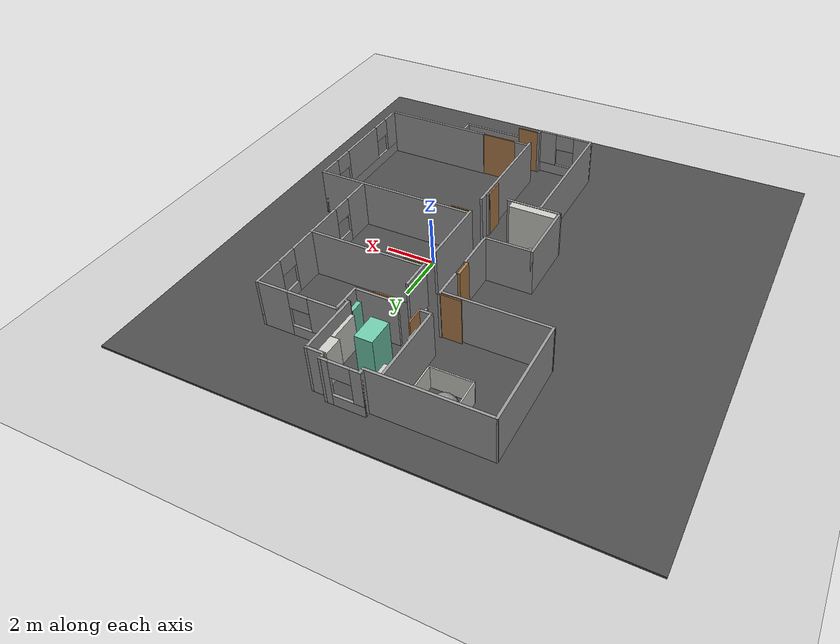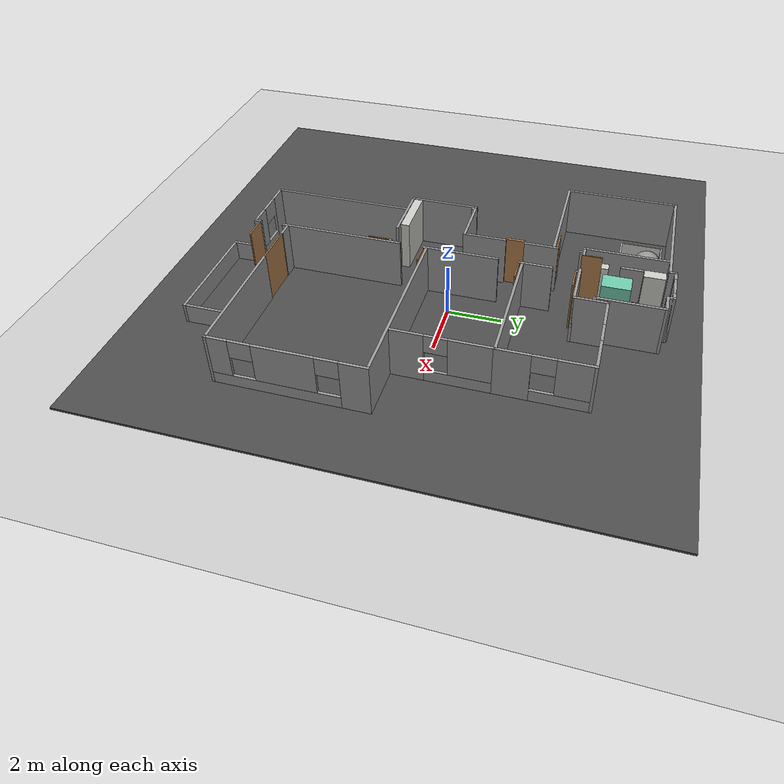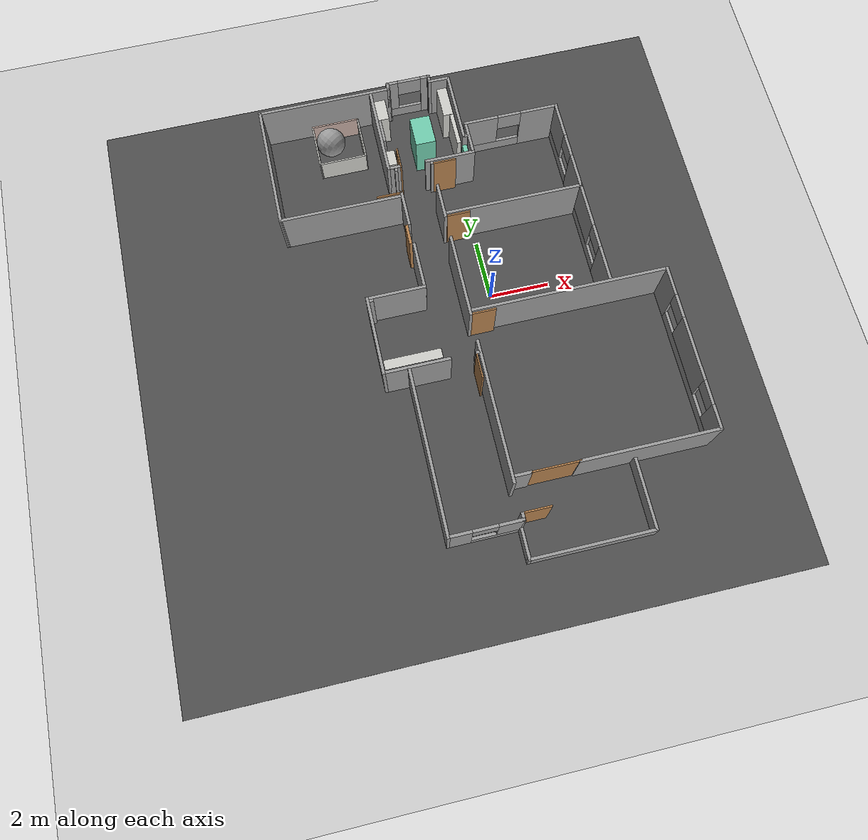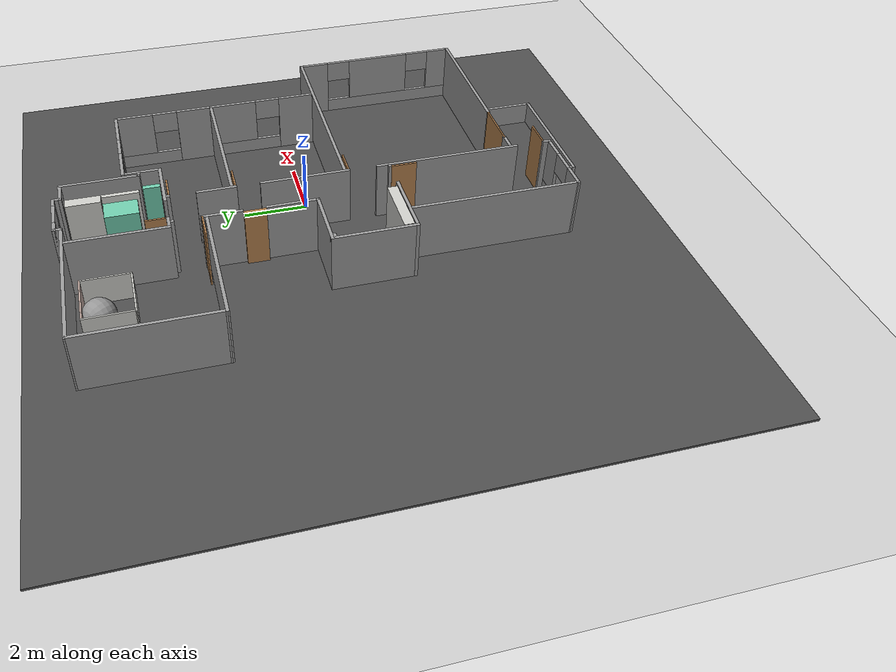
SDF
<sdf version="1.4">
 <world name="default">
  <light name="sun" type="directional">
   <pose>0 0 10 0 -0 0</pose>
   <diffuse>0.8 0.8 0.8 1</diffuse>
   <specular>0.2 0.2 0.2 1</specular>
   <attenuation>
    <range>1000</range>
    <constant>0.9</constant>
    <linear>0.01</linear>
    <quadratic>0.001</quadratic>
   </attenuation>
   <direction>-0.5 0.1 -0.9</direction>
  </light>
  <model name="ground_plane">
   <static>1</static>
   <link name="link">
    <collision name="collision">
     <geometry><plane><normal>0 0 1</normal><size>100 100</size></plane></geometry>
     <surface><friction><ode><mu>100</mu><mu2>50</mu2></ode></friction></surface>
    </collision>
    <visual name="visual">
     <cast_shadows>0</cast_shadows>
     <geometry><plane><normal>0 0 1</normal><size>100 100</size></plane></geometry>
     <material>
      <script><uri>file://media/materials/scripts/gazebo.material</uri><name>Gazebo/Grey</name></script>
     </material>
    </visual>
    <velocity_decay><linear>0</linear><angular>0</angular></velocity_decay>
   </link>
  </model>
  <physics type="ode">
   <max_step_size>0.001</max_step_size>
   <real_time_factor>1</real_time_factor>
   <real_time_update_rate>1000</real_time_update_rate>
   <gravity>0 0 -9.8</gravity>
  </physics>
  <scene><ambient>0.4 0.4 0.4 1</ambient><background>0.7 0.7 0.7 1</background><shadows>1</shadows></scene>
  <spherical_coordinates>
   <surface_model>EARTH_WGS84</surface_model>
   <latitude_deg>0</latitude_deg>
   <longitude_deg>0</longitude_deg>
   <elevation>0</elevation>
   <heading_deg>0</heading_deg>
  </spherical_coordinates>
  <model name="MilvusOfficeWalls">
   <pose>-0.418394 -0.567142 0 0 -0 0</pose>
   <link name="Wall_1">
    <collision name="Wall_1_Collision">
     <geometry><box><size>6.523 0.1 2</size></box></geometry>
     <pose>0 0 1 0 -0 0</pose>
    </collision>
    <visual name="Wall_1_Visual">
     <pose>0 0 1 0 -0 0</pose>
     <geometry><box><size>6.523 0.1 2</size></box></geometry>
     <material>
      <script><uri>file://media/materials/scripts/gazebo.material</uri><name>Gazebo/Grey</name></script>
      <ambient>1 1 1 1</ambient>
     </material>
    </visual>
    <pose>2.69703 -0.505 0 0 -0 0</pose>
    <velocity_decay><linear>0</linear><angular>0</angular></velocity_decay>
   </link>
   <link name="Wall_10">
    <collision name="Wall_10_Collision">
     <geometry><box><size>0.54 0.1 2</size></box></geometry>
     <pose>0 0 1 0 -0 0</pose>
    </collision>
    <visual name="Wall_10_Visual">
     <pose>0 0 1 0 -0 0</pose>
     <geometry><box><size>0.54 0.1 2</size></box></geometry>
     <material>
      <script><uri>file://media/materials/scripts/gazebo.material</uri><name>Gazebo/Grey</name></script>
      <ambient>1 1 1 1</ambient>
     </material>
    </visual>
    <pose>-0.29147 -5.951 0 0 -0 3.14159</pose>
    <velocity_decay><linear>0</linear><angular>0</angular></velocity_decay>
   </link>
   <link name="Wall_101">
    <collision name="Wall_101_Collision">
     <geometry><box><size>2.45 0.1 2</size></box></geometry>
     <pose>0 0 1 0 -0 0</pose>
    </collision>
    <visual name="Wall_101_Visual">
     <pose>0 0 1 0 -0 0</pose>
     <geometry><box><size>2.45 0.1 2</size></box></geometry>
     <material>
      <script><uri>file://media/materials/scripts/gazebo.material</uri><name>Gazebo/Grey</name></script>
      <ambient>1 1 1 1</ambient>
     </material>
    </visual>
    <pose>0.67653 6.909 0 0 0 -1.5708</pose>
    <velocity_decay><linear>0</linear><angular>0</angular></velocity_decay>
   </link>
   <link name="Wall_104">
    <collision name="Wall_104_Collision">
     <geometry><box><size>3.05 0.1 2</size></box></geometry>
     <pose>0 0 1 0 -0 0</pose>
    </collision>
    <visual name="Wall_104_Visual">
     <pose>0 0 1 0 -0 0</pose>
     <geometry><box><size>3.05 0.1 2</size></box></geometry>
     <material>
      <script><uri>file://media/materials/scripts/gazebo.material</uri><name>Gazebo/Grey</name></script>
      <ambient>1 1 1 1</ambient>
     </material>
    </visual>
    <pose>-2.06847 6.529 0 0 0 -1.5708</pose>
    <velocity_decay><linear>0</linear><angular>0</angular></velocity_decay>
   </link>
   <link name="Wall_106">
    <collision name="Wall_106_Collision">
     <geometry><box><size>0.5 0.1 2</size></box></geometry>
     <pose>0 0 1 0 -0 0</pose>
    </collision>
    <visual name="Wall_106_Visual">
     <pose>0 0 1 0 -0 0</pose>
     <geometry><box><size>0.5 0.1 2</size></box></geometry>
     <material>
      <script><uri>file://media/materials/scripts/gazebo.material</uri><name>Gazebo/Grey</name></script>
      <ambient>1 1 1 1</ambient>
     </material>
    </visual>
    <pose>-1.86847 5.054 0 0 -0 0</pose>
    <velocity_decay><linear>0</linear><angular>0</angular></velocity_decay>
   </link>
   <link name="Wall_108">
    <collision name="Wall_108_Collision">
     <geometry><box><size>0.73 0.05 2</size></box></geometry>
     <pose>0 0 1 0 -0 0</pose>
    </collision>
    <visual name="Wall_108_Visual">
     <pose>0 0 1 0 -0 0</pose>
     <geometry><box><size>0.73 0.05 2</size></box></geometry>
     <material>
      <script><uri>file://media/materials/scripts/gazebo.material</uri><name>Gazebo/Wood</name></script>
      <ambient>1 1 1 1</ambient>
     </material>
    </visual>
    <pose>-1.63947 5.365 0 0 0 -1.5708</pose>
    <velocity_decay><linear>0</linear><angular>0</angular></velocity_decay>
   </link>
   <link name="Wall_112">
    <collision name="Wall_112_Collision">
     <geometry><box><size>0.12 0.1 2</size></box></geometry>
     <pose>0 0 1 0 -0 0</pose>
    </collision>
    <visual name="Wall_112_Visual">
     <pose>0 0 1 0 -0 0</pose>
     <geometry><box><size>0.12 0.1 2</size></box></geometry>
     <material>
      <script><uri>file://media/materials/scripts/gazebo.material</uri><name>Gazebo/Grey</name></script>
      <ambient>1 1 1 1</ambient>
     </material>
    </visual>
    <pose>-1.82847 4.957 0 0 -0 1.5708</pose>
    <velocity_decay><linear>0</linear><angular>0</angular></velocity_decay>
   </link>
   <link name="Wall_114">
    <collision name="Wall_114_Collision">
     <geometry><box><size>0.856 0.05 2</size></box></geometry>
     <pose>0 0 1 0 -0 0</pose>
    </collision>
    <visual name="Wall_114_Visual">
     <pose>0 0 1 0 -0 0</pose>
     <geometry><box><size>0.856 0.05 2</size></box></geometry>
     <material>
      <script><uri>file://media/materials/scripts/gazebo.material</uri><name>Gazebo/Wood</name></script>
      <ambient>1 1 1 1</ambient>
     </material>
    </visual>
    <pose>-2.23247 4.071 0 0 -0 0</pose>
    <velocity_decay><linear>0</linear><angular>0</angular></velocity_decay>
   </link>
   <link name="Wall_118">
    <collision name="Wall_118_Collision">
     <geometry><box><size>0.126 0.1 2</size></box></geometry>
     <pose>0 0 1 0 -0 0</pose>
    </collision>
    <visual name="Wall_118_Visual">
     <pose>0 0 1 0 -0 0</pose>
     <geometry><box><size>0.126 0.1 2</size></box></geometry>
     <material>
      <script><uri>file://media/materials/scripts/gazebo.material</uri><name>Gazebo/Grey</name></script>
      <ambient>1 1 1 1</ambient>
     </material>
    </visual>
    <pose>-0.702885 -1.921 0 0 -0 0</pose>
    <velocity_decay><linear>0</linear><angular>0</angular></velocity_decay>
   </link>
   <link name="Wall_12">
    <collision name="Wall_12_Collision">
     <geometry><box><size>4.667 0.1 2</size></box></geometry>
     <pose>0 0 1 0 -0 0</pose>
    </collision>
    <visual name="Wall_12_Visual">
     <pose>0 0 1 0 -0 0</pose>
     <geometry><box><size>4.667 0.1 2</size></box></geometry>
     <material>
      <script><uri>file://media/materials/scripts/gazebo.material</uri><name>Gazebo/Grey</name></script>
      <ambient>1 1 1 1</ambient>
     </material>
    </visual>
    <pose>-0.61647 -3.8465 0 0 0 -1.5708</pose>
    <velocity_decay><linear>0</linear><angular>0</angular></velocity_decay>
   </link>
   <link name="Wall_120">
    <collision name="Wall_120_Collision">
     <geometry><box><size>0.81 0.05 2</size></box></geometry>
     <pose>0 0 1 0 -0 0</pose>
    </collision>
    <visual name="Wall_120_Visual">
     <pose>0 0 1 0 -0 0</pose>
     <geometry><box><size>0.81 0.05 2</size></box></geometry>
     <material>
      <script><uri>file://media/materials/scripts/gazebo.material</uri><name>Gazebo/Wood</name></script>
      <ambient>1 1 1 1</ambient>
     </material>
    </visual>
    <pose>-0.74147 -2.371 0 0 -0 1.5708</pose>
    <velocity_decay><linear>0</linear><angular>0</angular></velocity_decay>
   </link>
   <link name="Wall_122">
    <collision name="Wall_122_Collision">
     <geometry><box><size>0.78 0.4 1.5</size></box></geometry>
     <pose>0 0 0.75 0 -0 0</pose>
    </collision>
    <visual name="Wall_122_Visual">
     <pose>0 0 0.75 0 -0 0</pose>
     <geometry><box><size>0.78 0.4 1.5</size></box></geometry>
     <material>
      <script><uri>file://media/materials/scripts/gazebo.material</uri><name>Gazebo/CeilingTiled</name></script>
      <ambient>1 1 1 1</ambient>
     </material>
    </visual>
    <pose>-1.79947 7.64 0 0 0 -1.5708</pose>
    <velocity_decay><linear>0</linear><angular>0</angular></velocity_decay>
   </link>
   <link name="Wall_124">
    <collision name="Wall_124_Collision">
     <geometry><box><size>1.09 0.35 1.5</size></box></geometry>
     <pose>0 0 0.75 0 -0 0</pose>
    </collision>
    <visual name="Wall_124_Visual">
     <pose>0 0 0.75 0 -0 0</pose>
     <geometry><box><size>1.09 0.35 1.5</size></box></geometry>
     <material>
      <script><uri>file://media/materials/scripts/gazebo.material</uri><name>Gazebo/CeilingTiled</name></script>
      <ambient>1 1 1 1</ambient>
     </material>
    </visual>
    <pose>0.43653 7.486 0 0 0 -1.5708</pose>
    <velocity_decay><linear>0</linear><angular>0</angular></velocity_decay>
   </link>
   <link name="Wall_128">
    <collision name="Wall_128_Collision">
     <geometry><box><size>1.16 0.14 1.5</size></box></geometry>
     <pose>0 0 0.75 0 -0 0</pose>
    </collision>
    <visual name="Wall_128_Visual">
     <pose>0 0 0.75 0 -0 0</pose>
     <geometry><box><size>1.16 0.14 1.5</size></box></geometry>
     <material>
      <script><uri>file://media/materials/scripts/gazebo.material</uri><name>Gazebo/CeilingTiled</name></script>
      <ambient>0.435294 0.796078 0.67451 1</ambient>
     </material>
    </visual>
    <pose>0.54153 6.346 0 0 0 -1.5708</pose>
    <velocity_decay><linear>0</linear><angular>0</angular></velocity_decay>
   </link>
   <link name="Wall_132">
    <collision name="Wall_132_Collision">
     <geometry><box><size>0.541 0.16 1.5</size></box></geometry>
     <pose>0 0 0.75 0 -0 0</pose>
    </collision>
    <visual name="Wall_132_Visual">
     <pose>0 0 0.75 0 -0 0</pose>
     <geometry><box><size>0.541 0.16 1.5</size></box></geometry>
     <material>
      <script><uri>file://media/materials/scripts/gazebo.material</uri><name>Gazebo/Grey</name></script>
      <ambient>0.435294 0.796078 0.67451 1</ambient>
     </material>
    </visual>
    <pose>0.69653 5.3775 0 0 -0 1.5708</pose>
    <velocity_decay><linear>0</linear><angular>0</angular></velocity_decay>
   </link>
   <link name="Wall_134">
    <collision name="Wall_134_Collision">
     <geometry><box><size>0.56 0.31 1.5</size></box></geometry>
     <pose>0 0 0.75 0 -0 0</pose>
    </collision>
    <visual name="Wall_134_Visual">
     <pose>0 0 0.75 0 -0 0</pose>
     <geometry><box><size>0.56 0.31 1.5</size></box></geometry>
     <material>
      <script><uri>file://media/materials/scripts/gazebo.material</uri><name>Gazebo/CeilingTiled</name></script>
      <ambient>1 1 1 1</ambient>
     </material>
    </visual>
    <pose>-1.84647 5.714 0 0 -0 1.5708</pose>
    <velocity_decay><linear>0</linear><angular>0</angular></velocity_decay>
   </link>
   <link name="Wall_136">
    <collision name="Wall_136_Collision">
     <geometry><box><size>0.83 0.11 1.5</size></box></geometry>
     <pose>0 0 0.75 0 -0 0</pose>
    </collision>
    <visual name="Wall_136_Visual">
     <pose>0 0 0.75 0 -0 0</pose>
     <geometry><box><size>0.83 0.11 1.5</size></box></geometry>
     <material>
      <script><uri>file://media/materials/scripts/gazebo.material</uri><name>Gazebo/Grey</name></script>
      <ambient>1 1 1 1</ambient>
     </material>
    </visual>
    <pose>-1.94347 6.817 0 0 0 -1.5708</pose>
    <velocity_decay><linear>0</linear><angular>0</angular></velocity_decay>
   </link>
   <link name="Wall_138">
    <collision name="Wall_138_Collision">
     <geometry><box><size>1.03 0.69 1.8</size></box></geometry>
     <pose>0 0 0.9 0 -0 0</pose>
    </collision>
    <visual name="Wall_138_Visual">
     <pose>0 0 0.9 0 -0 0</pose>
     <geometry><box><size>1.03 0.69 1.8</size></box></geometry>
     <material>
      <script><uri>file://media/materials/scripts/gazebo.material</uri><name>Gazebo/Grey</name></script>
      <ambient>0.435294 0.796078 0.67451 1</ambient>
     </material>
    </visual>
    <pose>-0.60747 6.357 0 0 0 -1.5708</pose>
    <velocity_decay><linear>0</linear><angular>0</angular></velocity_decay>
   </link>
   <link name="Wall_140">
    <collision name="Wall_140_Collision">
     <geometry><box><size>1.85 0.32 2</size></box></geometry>
     <pose>0 0 1 0 -0 0</pose>
    </collision>
    <visual name="Wall_140_Visual">
     <pose>0 0 1 0 -0 0</pose>
     <geometry><box><size>1.85 0.32 2</size></box></geometry>
     <material>
      <script><uri>file://media/materials/scripts/gazebo.material</uri><name>Gazebo/CeilingTiled</name></script>
      <ambient>1 1 1 1</ambient>
     </material>
    </visual>
    <pose>-2.70781 -1.693 0 0 -0 0</pose>
    <velocity_decay><linear>0</linear><angular>0</angular></velocity_decay>
   </link>
   <link name="Wall_142">
    <collision name="Wall_142_Collision">
     <geometry><box><size>1.65 0.05 1</size></box></geometry>
     <pose>0 0 0.5 0 -0 0</pose>
    </collision>
    <visual name="Wall_142_Visual">
     <pose>0 0 0.5 0 -0 0</pose>
     <geometry><box><size>1.65 0.05 1</size></box></geometry>
     <material>
      <script><uri>file://media/materials/scripts/gazebo.material</uri><name>Gazebo/Grey</name></script>
      <ambient>0.760784 0.662745 0.627451 1</ambient>
     </material>
    </visual>
    <pose>-3.45147 7.804 0 0 -0 0</pose>
    <velocity_decay><linear>0</linear><angular>0</angular></velocity_decay>
   </link>
   <link name="Wall_143">
    <collision name="Wall_143_Collision">
     <geometry><box><size>1.54 0.05 1</size></box></geometry>
     <pose>0 0 0.5 0 -0 0</pose>
    </collision>
    <visual name="Wall_143_Visual">
     <pose>0 0 0.5 0 -0 0</pose>
     <geometry><box><size>1.54 0.05 1</size></box></geometry>
     <material>
      <script><uri>file://media/materials/scripts/gazebo.material</uri><name>Gazebo/CeilingTiled</name></script>
      <ambient>0.760784 0.662745 0.627451 1</ambient>
     </material>
    </visual>
    <pose>-2.65147 7.059 0 0 0 -1.5708</pose>
    <velocity_decay><linear>0</linear><angular>0</angular></velocity_decay>
   </link>
   <link name="Wall_144">
    <collision name="Wall_144_Collision">
     <geometry><box><size>1.65001 0.05 1</size></box></geometry>
     <pose>0 0 0.5 0 -0 0</pose>
    </collision>
    <visual name="Wall_144_Visual">
     <pose>0 0 0.5 0 -0 0</pose>
     <geometry><box><size>1.65001 0.05 1</size></box></geometry>
     <material>
      <script><uri>file://media/materials/scripts/gazebo.material</uri><name>Gazebo/CeilingTiled</name></script>
      <ambient>0.760784 0.662745 0.627451 1</ambient>
     </material>
    </visual>
    <pose>-3.45147 6.31 0 0 0 -3.13659</pose>
    <velocity_decay><linear>0</linear><angular>0</angular></velocity_decay>
   </link>
   <link name="Wall_145">
    <collision name="Wall_145_Collision">
     <geometry><box><size>1.548 0.05 1</size></box></geometry>
     <pose>0 0 0.5 0 -0 0</pose>
    </collision>
    <visual name="Wall_145_Visual">
     <pose>0 0 0.5 0 -0 0</pose>
     <geometry><box><size>1.548 0.05 1</size></box></geometry>
     <material>
      <script><uri>file://media/materials/scripts/gazebo.material</uri><name>Gazebo/CeilingTiled</name></script>
      <ambient>0.760784 0.662745 0.627451 1</ambient>
     </material>
    </visual>
    <pose>-4.25147 7.055 0 0 -0 1.5708</pose>
    <velocity_decay><linear>0</linear><angular>0</angular></velocity_decay>
   </link>
   <link name="Wall_15">
    <collision name="Wall_15_Collision">
     <geometry><box><size>2.82 0.1 2</size></box></geometry>
     <pose>0 0 1 0 -0 0</pose>
    </collision>
    <visual name="Wall_15_Visual">
     <pose>0 0 1 0 -0 0</pose>
     <geometry><box><size>2.82 0.1 2</size></box></geometry>
     <material>
      <script><uri>file://media/materials/scripts/gazebo.material</uri><name>Gazebo/Grey</name></script>
      <ambient>1 1 1 1</ambient>
     </material>
    </visual>
    <pose>-0.61047 0.742 0 0 0 -1.5708</pose>
    <velocity_decay><linear>0</linear><angular>0</angular></velocity_decay>
   </link>
   <link name="Wall_159">
    <collision name="Wall_159_Collision">
     <geometry><box><size>0.27 0.1 2</size></box></geometry>
     <pose>0 0 1 0 -0 0</pose>
    </collision>
    <visual name="Wall_159_Visual">
     <pose>0 0 1 0 -0 0</pose>
     <geometry><box><size>0.27 0.1 2</size></box></geometry>
     <material>
      <script><uri>file://media/materials/scripts/gazebo.material</uri><name>Gazebo/Grey</name></script>
      <ambient>1 1 1 1</ambient>
     </material>
    </visual>
    <pose>-0.61047 -7.181 0 0 -0 1.5708</pose>
    <velocity_decay><linear>0</linear><angular>0</angular></velocity_decay>
   </link>
   <link name="Wall_17">
    <collision name="Wall_17_Collision">
     <geometry><box><size>1.24 0.1 2</size></box></geometry>
     <pose>0 0 1 0 -0 0</pose>
    </collision>
    <visual name="Wall_17_Visual">
     <pose>0 0 1 0 -0 0</pose>
     <geometry><box><size>1.24 0.1 2</size></box></geometry>
     <material>
      <script><uri>file://media/materials/scripts/gazebo.material</uri><name>Gazebo/Grey</name></script>
      <ambient>1 1 1 1</ambient>
     </material>
    </visual>
    <pose>-0.61047 3.486 0 0 0 -1.5708</pose>
    <velocity_decay><linear>0</linear><angular>0</angular></velocity_decay>
   </link>
   <link name="Wall_19">
    <collision name="Wall_19_Collision">
     <geometry><box><size>0.77 0.05 2</size></box></geometry>
     <pose>0 0 1 0 -0 0</pose>
    </collision>
    <visual name="Wall_19_Visual">
     <pose>0 0 1 0 -0 0</pose>
     <geometry><box><size>0.77 0.05 2</size></box></geometry>
     <material>
      <script><uri>file://media/materials/scripts/gazebo.material</uri><name>Gazebo/Wood</name></script>
      <ambient>1 1 1 1</ambient>
     </material>
    </visual>
    <pose>-0.16547 2.898 0 0 -0 3.14159</pose>
    <velocity_decay><linear>0</linear><angular>0</angular></velocity_decay>
   </link>
   <link name="Wall_21">
    <collision name="Wall_21_Collision">
     <geometry><box><size>4.64 0.1 2</size></box></geometry>
     <pose>0 0 1 0 -0 0</pose>
    </collision>
    <visual name="Wall_21_Visual">
     <pose>0 0 1 0 -0 0</pose>
     <geometry><box><size>4.64 0.1 2</size></box></geometry>
     <material>
      <script><uri>file://media/materials/scripts/gazebo.material</uri><name>Gazebo/Grey</name></script>
      <ambient>1 1 1 1</ambient>
     </material>
    </visual>
    <pose>1.75553 3.017 0 0 -0 3.14159</pose>
    <velocity_decay><linear>0</linear><angular>0</angular></velocity_decay>
   </link>
   <link name="Wall_23">
    <collision name="Wall_23_Collision">
     <geometry><box><size>0.78 0.05 2</size></box></geometry>
     <pose>0 0 1 0 -0 0</pose>
    </collision>
    <visual name="Wall_23_Visual">
     <pose>0 0 1 0 -0 0</pose>
     <geometry><box><size>0.78 0.05 2</size></box></geometry>
     <material>
      <script><uri>file://media/materials/scripts/gazebo.material</uri><name>Gazebo/Wood</name></script>
      <ambient>1 1 1 1</ambient>
     </material>
    </visual>
    <pose>-0.17147 -0.631 0 0 -0 3.14159</pose>
    <velocity_decay><linear>0</linear><angular>0</angular></velocity_decay>
   </link>
   <link name="Wall_25">
    <pose>4.02553 1.3055 0 0 -0 1.5708</pose>
    <visual name="Wall_25_Visual_0">
     <pose>-1.18139 0 1 0 -0 0</pose>
     <geometry><box><size>1.16023 0.1 2</size></box></geometry>
     <material>
      <script><uri>file://media/materials/scripts/gazebo.material</uri><name>Gazebo/Grey</name></script>
      <ambient>1 1 1 1</ambient>
     </material>
    </visual>
    <collision name="Wall_25_Collision_0">
     <geometry><box><size>1.16023 0.1 2</size></box></geometry>
     <pose>-1.18139 0 1 0 -0 0</pose>
    </collision>
    <visual name="Wall_25_Visual_1">
     <pose>0.580118 0 0.25 0 -0 0</pose>
     <geometry><box><size>2.36277 0.1 0.5</size></box></geometry>
     <material>
      <script><uri>file://media/materials/scripts/gazebo.material</uri><name>Gazebo/Grey</name></script>
      <ambient>1 1 1 1</ambient>
     </material>
    </visual>
    <collision name="Wall_25_Collision_1">
     <geometry><box><size>2.36277 0.1 0.5</size></box></geometry>
     <pose>0.580118 0 0.25 0 -0 0</pose>
    </collision>
    <visual name="Wall_25_Visual_2">
     <pose>0.980118 0 1.25 0 -0 0</pose>
     <geometry><box><size>1.56277 0.1 1.5</size></box></geometry>
     <material>
      <script><uri>file://media/materials/scripts/gazebo.material</uri><name>Gazebo/Grey</name></script>
      <ambient>1 1 1 1</ambient>
     </material>
    </visual>
    <collision name="Wall_25_Collision_2">
     <geometry><box><size>1.56277 0.1 1.5</size></box></geometry>
     <pose>0.980118 0 1.25 0 -0 0</pose>
    </collision>
    <visual name="Wall_25_Visual_3">
     <pose>-0.201269 0 1.65 0 -0 0</pose>
     <geometry><box><size>0.8 0.1 0.7</size></box></geometry>
     <material>
      <script><uri>file://media/materials/scripts/gazebo.material</uri><name>Gazebo/Grey</name></script>
      <ambient>1 1 1 1</ambient>
     </material>
    </visual>
    <collision name="Wall_25_Collision_3">
     <geometry><box><size>0.8 0.1 0.7</size></box></geometry>
     <pose>-0.201269 0 1.65 0 -0 0</pose>
    </collision>
    <velocity_decay><linear>0</linear><angular>0</angular></velocity_decay>
   </link>
   <link name="Wall_27">
    <pose>4.02553 4.597 0 0 -0 1.5708</pose>
    <visual name="Wall_27_Visual_0">
     <pose>-1.02615 0 1 0 -0 0</pose>
     <geometry><box><size>1.2077 0.1 2</size></box></geometry>
     <material>
      <script><uri>file://media/materials/scripts/gazebo.material</uri><name>Gazebo/Grey</name></script>
      <ambient>1 1 1 1</ambient>
     </material>
    </visual>
    <collision name="Wall_27_Collision_0">
     <geometry><box><size>1.2077 0.1 2</size></box></geometry>
     <pose>-1.02615 0 1 0 -0 0</pose>
    </collision>
    <visual name="Wall_27_Visual_1">
     <pose>0.603852 0 0.25 0 -0 0</pose>
     <geometry><box><size>2.0523 0.1 0.5</size></box></geometry>
     <material>
      <script><uri>file://media/materials/scripts/gazebo.material</uri><name>Gazebo/Grey</name></script>
      <ambient>1 1 1 1</ambient>
     </material>
    </visual>
    <collision name="Wall_27_Collision_1">
     <geometry><box><size>2.0523 0.1 0.5</size></box></geometry>
     <pose>0.603852 0 0.25 0 -0 0</pose>
    </collision>
    <visual name="Wall_27_Visual_2">
     <pose>1.00385 0 1.25 0 -0 0</pose>
     <geometry><box><size>1.2523 0.1 1.5</size></box></geometry>
     <material>
      <script><uri>file://media/materials/scripts/gazebo.material</uri><name>Gazebo/Grey</name></script>
      <ambient>1 1 1 1</ambient>
     </material>
    </visual>
    <collision name="Wall_27_Collision_2">
     <geometry><box><size>1.2523 0.1 1.5</size></box></geometry>
     <pose>1.00385 0 1.25 0 -0 0</pose>
    </collision>
    <visual name="Wall_27_Visual_3">
     <pose>-0.022296 0 1.65 0 -0 0</pose>
     <geometry><box><size>0.8 0.1 0.7</size></box></geometry>
     <material>
      <script><uri>file://media/materials/scripts/gazebo.material</uri><name>Gazebo/Grey</name></script>
      <ambient>1 1 1 1</ambient>
     </material>
    </visual>
    <collision name="Wall_27_Collision_3">
     <geometry><box><size>0.8 0.1 0.7</size></box></geometry>
     <pose>-0.022296 0 1.65 0 -0 0</pose>
    </collision>
    <velocity_decay><linear>0</linear><angular>0</angular></velocity_decay>
   </link>
   <link name="Wall_29">
    <pose>2.43553 6.177 0 0 -0 3.14159</pose>
    <visual name="Wall_29_Visual_0">
     <pose>-0.993397 0 1 0 -0 0</pose>
     <geometry><box><size>1.2932 0.1 2</size></box></geometry>
     <material>
      <script><uri>file://media/materials/scripts/gazebo.material</uri><name>Gazebo/Grey</name></script>
      <ambient>1 1 1 1</ambient>
     </material>
    </visual>
    <collision name="Wall_29_Collision_0">
     <geometry><box><size>1.2932 0.1 2</size></box></geometry>
     <pose>-0.993397 0 1 0 -0 0</pose>
    </collision>
    <visual name="Wall_29_Visual_1">
     <pose>0.646603 0 0.25 0 -0 0</pose>
     <geometry><box><size>1.9868 0.1 0.5</size></box></geometry>
     <material>
      <script><uri>file://media/materials/scripts/gazebo.material</uri><name>Gazebo/Grey</name></script>
      <ambient>1 1 1 1</ambient>
     </material>
    </visual>
    <collision name="Wall_29_Collision_1">
     <geometry><box><size>1.9868 0.1 0.5</size></box></geometry>
     <pose>0.646603 0 0.25 0 -0 0</pose>
    </collision>
    <visual name="Wall_29_Visual_2">
     <pose>1.0466 0 1.25 0 -0 0</pose>
     <geometry><box><size>1.1868 0.1 1.5</size></box></geometry>
     <material>
      <script><uri>file://media/materials/scripts/gazebo.material</uri><name>Gazebo/Grey</name></script>
      <ambient>1 1 1 1</ambient>
     </material>
    </visual>
    <collision name="Wall_29_Collision_2">
     <geometry><box><size>1.1868 0.1 1.5</size></box></geometry>
     <pose>1.0466 0 1.25 0 -0 0</pose>
    </collision>
    <visual name="Wall_29_Visual_3">
     <pose>0.053205 0 1.65 0 -0 0</pose>
     <geometry><box><size>0.8 0.1 0.7</size></box></geometry>
     <material>
      <script><uri>file://media/materials/scripts/gazebo.material</uri><name>Gazebo/Grey</name></script>
      <ambient>1 1 1 1</ambient>
     </material>
    </visual>
    <collision name="Wall_29_Collision_3">
     <geometry><box><size>0.8 0.1 0.7</size></box></geometry>
     <pose>0.053205 0 1.65 0 -0 0</pose>
    </collision>
    <velocity_decay><linear>0</linear><angular>0</angular></velocity_decay>
   </link>
   <link name="Wall_31">
    <collision name="Wall_31_Collision">
     <geometry><box><size>1.23 0.1 2</size></box></geometry>
     <pose>0 0 1 0 -0 0</pose>
    </collision>
    <visual name="Wall_31_Visual">
     <pose>0 0 1 0 -0 0</pose>
     <geometry><box><size>1.23 0.1 2</size></box></geometry>
     <material>
      <script><uri>file://media/materials/scripts/gazebo.material</uri><name>Gazebo/Grey</name></script>
      <ambient>1 1 1 1</ambient>
     </material>
    </visual>
    <pose>0.84553 5.612 0 0 0 -1.5708</pose>
    <velocity_decay><linear>0</linear><angular>0</angular></velocity_decay>
   </link>
   <link name="Wall_33">
    <collision name="Wall_33_Collision">
     <geometry><box><size>1.71 0.1 2</size></box></geometry>
     <pose>0 0 1 0 -0 0</pose>
    </collision>
    <visual name="Wall_33_Visual">
     <pose>0 0 1 0 -0 0</pose>
     <geometry><box><size>1.71 0.1 2</size></box></geometry>
     <material>
      <script><uri>file://media/materials/scripts/gazebo.material</uri><name>Gazebo/Grey</name></script>
      <ambient>1 1 1 1</ambient>
     </material>
    </visual>
    <pose>0.04053 5.047 0 0 -0 3.14159</pose>
    <velocity_decay><linear>0</linear><angular>0</angular></velocity_decay>
   </link>
   <link name="Wall_37">
    <collision name="Wall_37_Collision">
     <geometry><box><size>0.11 0.1 2</size></box></geometry>
     <pose>0 0 1 0 -0 0</pose>
    </collision>
    <visual name="Wall_37_Visual">
     <pose>0 0 1 0 -0 0</pose>
     <geometry><box><size>0.11 0.1 2</size></box></geometry>
     <material>
      <script><uri>file://media/materials/scripts/gazebo.material</uri><name>Gazebo/Grey</name></script>
      <ambient>1 1 1 1</ambient>
     </material>
    </visual>
    <pose>-0.60447 4.942 0 0 -0 1.5708</pose>
    <velocity_decay><linear>0</linear><angular>0</angular></velocity_decay>
   </link>
   <link name="Wall_39">
    <collision name="Wall_39_Collision">
     <geometry><box><size>0.78 0.05 2</size></box></geometry>
     <pose>0 0 1 0 -0 0</pose>
    </collision>
    <visual name="Wall_39_Visual">
     <pose>0 0 1 0 -0 0</pose>
     <geometry><box><size>0.78 0.05 2</size></box></geometry>
     <material>
      <script><uri>file://media/materials/scripts/gazebo.material</uri><name>Gazebo/Wood</name></script>
      <ambient>1 1 1 1</ambient>
     </material>
    </visual>
    <pose>-0.16947 4.912 0 0 -0 3.14159</pose>
    <velocity_decay><linear>0</linear><angular>0</angular></velocity_decay>
   </link>
   <link name="Wall_4">
    <pose>5.90853 -3.228 0 0 0 -1.5708</pose>
    <visual name="Wall_4_Visual_0">
     <pose>-2.27445 0 1 0 -0 0</pose>
     <geometry><box><size>0.997098 0.1 2</size></box></geometry>
     <material>
      <script><uri>file://media/materials/scripts/gazebo.material</uri><name>Gazebo/Grey</name></script>
      <ambient>1 1 1 1</ambient>
     </material>
    </visual>
    <collision name="Wall_4_Collision_0">
     <geometry><box><size>0.997098 0.1 2</size></box></geometry>
     <pose>-2.27445 0 1 0 -0 0</pose>
    </collision>
    <visual name="Wall_4_Visual_1">
     <pose>0.498549 0 0.25 0 -0 0</pose>
     <geometry><box><size>4.5489 0.1 0.5</size></box></geometry>
     <material>
      <script><uri>file://media/materials/scripts/gazebo.material</uri><name>Gazebo/Grey</name></script>
      <ambient>1 1 1 1</ambient>
     </material>
    </visual>
    <collision name="Wall_4_Collision_1">
     <geometry><box><size>4.5489 0.1 0.5</size></box></geometry>
     <pose>0.498549 0 0.25 0 -0 0</pose>
    </collision>
    <visual name="Wall_4_Visual_2">
     <pose>0.087432 0 1.25 0 -0 0</pose>
     <geometry><box><size>2.12667 0.1 1.5</size></box></geometry>
     <material>
      <script><uri>file://media/materials/scripts/gazebo.material</uri><name>Gazebo/Grey</name></script>
      <ambient>1 1 1 1</ambient>
     </material>
    </visual>
    <collision name="Wall_4_Collision_2">
     <geometry><box><size>2.12667 0.1 1.5</size></box></geometry>
     <pose>0.087432 0 1.25 0 -0 0</pose>
    </collision>
    <visual name="Wall_4_Visual_3">
     <pose>2.36188 0 1.25 0 -0 0</pose>
     <geometry><box><size>0.822234 0.1 1.5</size></box></geometry>
     <material>
      <script><uri>file://media/materials/scripts/gazebo.material</uri><name>Gazebo/Grey</name></script>
      <ambient>1 1 1 1</ambient>
     </material>
    </visual>
    <collision name="Wall_4_Collision_3">
     <geometry><box><size>0.822234 0.1 1.5</size></box></geometry>
     <pose>2.36188 0 1.25 0 -0 0</pose>
    </collision>
    <visual name="Wall_4_Visual_4">
     <pose>-1.3759 0 1.65 0 -0 0</pose>
     <geometry><box><size>0.8 0.1 0.7</size></box></geometry>
     <material>
      <script><uri>file://media/materials/scripts/gazebo.material</uri><name>Gazebo/Grey</name></script>
      <ambient>1 1 1 1</ambient>
     </material>
    </visual>
    <collision name="Wall_4_Collision_4">
     <geometry><box><size>0.8 0.1 0.7</size></box></geometry>
     <pose>-1.3759 0 1.65 0 -0 0</pose>
    </collision>
    <visual name="Wall_4_Visual_5">
     <pose>1.55077 0 1.65 0 -0 0</pose>
     <geometry><box><size>0.8 0.1 0.7</size></box></geometry>
     <material>
      <script><uri>file://media/materials/scripts/gazebo.material</uri><name>Gazebo/Grey</name></script>
      <ambient>1 1 1 1</ambient>
     </material>
    </visual>
    <collision name="Wall_4_Collision_5">
     <geometry><box><size>0.8 0.1 0.7</size></box></geometry>
     <pose>1.55077 0 1.65 0 -0 0</pose>
    </collision>
    <velocity_decay><linear>0</linear><angular>0</angular></velocity_decay>
   </link>
   <link name="Wall_41">
    <collision name="Wall_41_Collision">
     <geometry><box><size>2.34 0.1 0.8</size></box></geometry>
     <pose>0 0 0.4 0 -0 0</pose>
    </collision>
    <visual name="Wall_41_Visual">
     <pose>0 0 0.4 0 -0 0</pose>
     <geometry><box><size>2.34 0.1 0.8</size></box></geometry>
     <material>
      <script><uri>file://media/materials/scripts/gazebo.material</uri><name>Gazebo/Grey</name></script>
      <ambient>1 1 1 1</ambient>
     </material>
    </visual>
    <pose>3.40453 -7.174 0 0 0 -1.5708</pose>
    <velocity_decay><linear>0</linear><angular>0</angular></velocity_decay>
   </link>
   <link name="Wall_43">
    <collision name="Wall_43_Collision">
     <geometry><box><size>4.11 0.1 0.8</size></box></geometry>
     <pose>0 0 0.4 0 -0 0</pose>
    </collision>
    <visual name="Wall_43_Visual">
     <pose>0 0 0.4 0 -0 0</pose>
     <geometry><box><size>4.11 0.1 0.8</size></box></geometry>
     <material>
      <script><uri>file://media/materials/scripts/gazebo.material</uri><name>Gazebo/Grey</name></script>
      <ambient>1 1 1 1</ambient>
     </material>
    </visual>
    <pose>1.39953 -8.294 0 0 -0 3.14159</pose>
    <velocity_decay><linear>0</linear><angular>0</angular></velocity_decay>
   </link>
   <link name="Wall_45">
    <collision name="Wall_45_Collision">
     <geometry><box><size>1.041 0.1 0.8</size></box></geometry>
     <pose>0 0 0.4 0 -0 0</pose>
    </collision>
    <visual name="Wall_45_Visual">
     <pose>0 0 0.4 0 -0 0</pose>
     <geometry><box><size>1.041 0.1 0.8</size></box></geometry>
     <material>
      <script><uri>file://media/materials/scripts/gazebo.material</uri><name>Gazebo/Grey</name></script>
      <ambient>1 1 1 1</ambient>
     </material>
    </visual>
    <pose>-0.60547 -7.8235 0 0 -0 1.5708</pose>
    <velocity_decay><linear>0</linear><angular>0</angular></velocity_decay>
   </link>
   <link name="Wall_47">
    <collision name="Wall_47_Collision">
     <geometry><box><size>0.87 0.05 2</size></box></geometry>
     <pose>0 0 1 0 -0 0</pose>
    </collision>
    <visual name="Wall_47_Visual">
     <pose>0 0 1 0 -0 0</pose>
     <geometry><box><size>0.87 0.05 2</size></box></geometry>
     <material>
      <script><uri>file://media/materials/scripts/gazebo.material</uri><name>Gazebo/Wood</name></script>
      <ambient>1 1 1 1</ambient>
     </material>
    </visual>
    <pose>-0.13047 -7.068 0 0 -0 3.14159</pose>
    <velocity_decay><linear>0</linear><angular>0</angular></velocity_decay>
   </link>
   <link name="Wall_50">
    <pose>-1.75547 -7.266 0 0 -0 0</pose>
    <visual name="Wall_50_Visual_0">
     <pose>-0.803333 0 1 0 -0 0</pose>
     <geometry><box><size>0.783334 0.1 2</size></box></geometry>
     <material>
      <script><uri>file://media/materials/scripts/gazebo.material</uri><name>Gazebo/Grey</name></script>
      <ambient>1 1 1 1</ambient>
     </material>
    </visual>
    <collision name="Wall_50_Collision_0">
     <geometry><box><size>0.783334 0.1 2</size></box></geometry>
     <pose>-0.803333 0 1 0 -0 0</pose>
    </collision>
    <visual name="Wall_50_Visual_1">
     <pose>0.391667 0 0.25 0 -0 0</pose>
     <geometry><box><size>1.60667 0.1 0.5</size></box></geometry>
     <material>
      <script><uri>file://media/materials/scripts/gazebo.material</uri><name>Gazebo/Grey</name></script>
      <ambient>1 1 1 1</ambient>
     </material>
    </visual>
    <collision name="Wall_50_Collision_1">
     <geometry><box><size>1.60667 0.1 0.5</size></box></geometry>
     <pose>0.391667 0 0.25 0 -0 0</pose>
    </collision>
    <visual name="Wall_50_Visual_2">
     <pose>0.791667 0 1.25 0 -0 0</pose>
     <geometry><box><size>0.806666 0.1 1.5</size></box></geometry>
     <material>
      <script><uri>file://media/materials/scripts/gazebo.material</uri><name>Gazebo/Grey</name></script>
      <ambient>1 1 1 1</ambient>
     </material>
    </visual>
    <collision name="Wall_50_Collision_2">
     <geometry><box><size>0.806666 0.1 1.5</size></box></geometry>
     <pose>0.791667 0 1.25 0 -0 0</pose>
    </collision>
    <visual name="Wall_50_Visual_3">
     <pose>-0.011666 0 1.65 0 -0 0</pose>
     <geometry><box><size>0.8 0.1 0.7</size></box></geometry>
     <material>
      <script><uri>file://media/materials/scripts/gazebo.material</uri><name>Gazebo/Grey</name></script>
      <ambient>1 1 1 1</ambient>
     </material>
    </visual>
    <collision name="Wall_50_Collision_3">
     <geometry><box><size>0.8 0.1 0.7</size></box></geometry>
     <pose>-0.011666 0 1.65 0 -0 0</pose>
    </collision>
    <velocity_decay><linear>0</linear><angular>0</angular></velocity_decay>
   </link>
   <link name="Wall_53">
    <collision name="Wall_53_Collision">
     <geometry><box><size>5.35417 0.1 2</size></box></geometry>
     <pose>0 0 1 0 -0 0</pose>
    </collision>
    <visual name="Wall_53_Visual">
     <pose>0 0 1 0 -0 0</pose>
     <geometry><box><size>5.35417 0.1 2</size></box></geometry>
     <material>
      <script><uri>file://media/materials/scripts/gazebo.material</uri><name>Gazebo/Grey</name></script>
      <ambient>1 1 1 1</ambient>
     </material>
    </visual>
    <pose>-2.89747 -4.639 0 0 -0 1.56965</pose>
    <velocity_decay><linear>0</linear><angular>0</angular></velocity_decay>
   </link>
   <link name="Wall_55">
    <collision name="Wall_55_Collision">
     <geometry><box><size>2.20031 0.1 2</size></box></geometry>
     <pose>0 0 1 0 -0 0</pose>
    </collision>
    <visual name="Wall_55_Visual">
     <pose>0 0 1 0 -0 0</pose>
     <geometry><box><size>2.20031 0.1 2</size></box></geometry>
     <material>
      <script><uri>file://media/materials/scripts/gazebo.material</uri><name>Gazebo/Grey</name></script>
      <ambient>1 1 1 1</ambient>
     </material>
    </visual>
    <pose>-2.64947 -1.924 0 0 -0 3.14159</pose>
    <velocity_decay><linear>0</linear><angular>0</angular></velocity_decay>
   </link>
   <link name="Wall_57">
    <collision name="Wall_57_Collision">
     <geometry><box><size>0.15 0.1 2</size></box></geometry>
     <pose>0 0 1 0 -0 0</pose>
    </collision>
    <visual name="Wall_57_Visual">
     <pose>0 0 1 0 -0 0</pose>
     <geometry><box><size>0.15 0.1 2</size></box></geometry>
     <material>
      <script><uri>file://media/materials/scripts/gazebo.material</uri><name>Gazebo/Grey</name></script>
      <ambient>1 1 1 1</ambient>
     </material>
    </visual>
    <pose>-3.58947 0.522 0 0 -0 0</pose>
    <velocity_decay><linear>0</linear><angular>0</angular></velocity_decay>
   </link>
   <link name="Wall_6">
    <collision name="Wall_6_Collision">
     <geometry><box><size>4.51 0.1 2</size></box></geometry>
     <pose>0 0 1 0 -0 0</pose>
    </collision>
    <visual name="Wall_6_Visual">
     <pose>0 0 1 0 -0 0</pose>
     <geometry><box><size>4.51 0.1 2</size></box></geometry>
     <material>
      <script><uri>file://media/materials/scripts/gazebo.material</uri><name>Gazebo/Grey</name></script>
      <ambient>1 1 1 1</ambient>
     </material>
    </visual>
    <pose>3.70353 -5.951 0 0 -0 3.14159</pose>
    <velocity_decay><linear>0</linear><angular>0</angular></velocity_decay>
   </link>
   <link name="Wall_60">
    <collision name="Wall_60_Collision">
     <geometry><box><size>2.64 0.1 2</size></box></geometry>
     <pose>0 0 1 0 -0 0</pose>
    </collision>
    <visual name="Wall_60_Visual">
     <pose>0 0 1 0 -0 0</pose>
     <geometry><box><size>2.64 0.1 2</size></box></geometry>
     <material>
      <script><uri>file://media/materials/scripts/gazebo.material</uri><name>Gazebo/Grey</name></script>
      <ambient>1 1 1 1</ambient>
     </material>
    </visual>
    <pose>-3.69947 -0.654 0 0 -0 1.5708</pose>
    <velocity_decay><linear>0</linear><angular>0</angular></velocity_decay>
   </link>
   <link name="Wall_62">
    <collision name="Wall_62_Collision">
     <geometry><box><size>1.97 0.1 2</size></box></geometry>
     <pose>0 0 1 0 -0 0</pose>
    </collision>
    <visual name="Wall_62_Visual">
     <pose>0 0 1 0 -0 0</pose>
     <geometry><box><size>1.97 0.1 2</size></box></geometry>
     <material>
      <script><uri>file://media/materials/scripts/gazebo.material</uri><name>Gazebo/Grey</name></script>
      <ambient>1 1 1 1</ambient>
     </material>
    </visual>
    <pose>-2.76447 0.616 0 0 -0 0</pose>
    <velocity_decay><linear>0</linear><angular>0</angular></velocity_decay>
   </link>
   <link name="Wall_64">
    <collision name="Wall_64_Collision">
     <geometry><box><size>1.62 0.1 2</size></box></geometry>
     <pose>0 0 1 0 -0 0</pose>
    </collision>
    <visual name="Wall_64_Visual">
     <pose>0 0 1 0 -0 0</pose>
     <geometry><box><size>1.62 0.1 2</size></box></geometry>
     <material>
      <script><uri>file://media/materials/scripts/gazebo.material</uri><name>Gazebo/Grey</name></script>
      <ambient>1 1 1 1</ambient>
     </material>
    </visual>
    <pose>-1.82947 1.376 0 0 -0 1.5708</pose>
    <velocity_decay><linear>0</linear><angular>0</angular></velocity_decay>
   </link>
   <link name="Wall_67">
    <collision name="Wall_67_Collision">
     <geometry><box><size>0.681 0.1 2</size></box></geometry>
     <pose>0 0 1 0 -0 0</pose>
    </collision>
    <visual name="Wall_67_Visual">
     <pose>0 0 1 0 -0 0</pose>
     <geometry><box><size>0.681 0.1 2</size></box></geometry>
     <material>
      <script><uri>file://media/materials/scripts/gazebo.material</uri><name>Gazebo/Wood</name></script>
      <ambient>1 1 1 1</ambient>
     </material>
    </visual>
    <pose>-1.92847 2.5265 0 0 0 -1.5708</pose>
    <velocity_decay><linear>0</linear><angular>0</angular></velocity_decay>
   </link>
   <link name="Wall_69">
    <collision name="Wall_69_Collision">
     <geometry><box><size>1.254 0.1 2</size></box></geometry>
     <pose>0 0 1 0 -0 0</pose>
    </collision>
    <visual name="Wall_69_Visual">
     <pose>0 0 1 0 -0 0</pose>
     <geometry><box><size>1.254 0.1 2</size></box></geometry>
     <material>
      <script><uri>file://media/materials/scripts/gazebo.material</uri><name>Gazebo/Grey</name></script>
      <ambient>1 1 1 1</ambient>
     </material>
    </visual>
    <pose>-1.82947 3.494 0 0 0 -1.5708</pose>
    <velocity_decay><linear>0</linear><angular>0</angular></velocity_decay>
   </link>
   <link name="Wall_71">
    <collision name="Wall_71_Collision">
     <geometry><box><size>4.08 0.1 2</size></box></geometry>
     <pose>0 0 1 0 -0 0</pose>
    </collision>
    <visual name="Wall_71_Visual">
     <pose>0 0 1 0 -0 0</pose>
     <geometry><box><size>4.08 0.1 2</size></box></geometry>
     <material>
      <script><uri>file://media/materials/scripts/gazebo.material</uri><name>Gazebo/Grey</name></script>
      <ambient>1 1 1 1</ambient>
     </material>
    </visual>
    <pose>-3.91847 3.953 0 0 -0 0</pose>
    <velocity_decay><linear>0</linear><angular>0</angular></velocity_decay>
   </link>
   <link name="Wall_73">
    <collision name="Wall_73_Collision">
     <geometry><box><size>4.251 0.1 2</size></box></geometry>
     <pose>0 0 1 0 -0 0</pose>
    </collision>
    <visual name="Wall_73_Visual">
     <pose>0 0 1 0 -0 0</pose>
     <geometry><box><size>4.251 0.1 2</size></box></geometry>
     <material>
      <script><uri>file://media/materials/scripts/gazebo.material</uri><name>Gazebo/Grey</name></script>
      <ambient>1 1 1 1</ambient>
     </material>
    </visual>
    <pose>-5.90597 6.0285 0 0 0 -1.572</pose>
    <velocity_decay><linear>0</linear><angular>0</angular></velocity_decay>
   </link>
   <link name="Wall_75">
    <collision name="Wall_75_Collision">
     <geometry><box><size>4.58 0.1 2</size></box></geometry>
     <pose>0 0 1 0 -0 0</pose>
    </collision>
    <visual name="Wall_75_Visual">
     <pose>0 0 1 0 -0 0</pose>
     <geometry><box><size>4.58 0.1 2</size></box></geometry>
     <material>
      <script><uri>file://media/materials/scripts/gazebo.material</uri><name>Gazebo/Grey</name></script>
      <ambient>1 1 1 1</ambient>
     </material>
    </visual>
    <pose>-3.66347 8.104 0 0 -0 0</pose>
    <velocity_decay><linear>0</linear><angular>0</angular></velocity_decay>
   </link>
   <link name="Wall_79">
    <collision name="Wall_79_Collision">
     <geometry><box><size>0.29 0.1 2</size></box></geometry>
     <pose>0 0 1 0 -0 0</pose>
    </collision>
    <visual name="Wall_79_Visual">
     <pose>0 0 1 0 -0 0</pose>
     <geometry><box><size>0.29 0.1 2</size></box></geometry>
     <material>
      <script><uri>file://media/materials/scripts/gazebo.material</uri><name>Gazebo/Grey</name></script>
      <ambient>1 1 1 1</ambient>
     </material>
    </visual>
    <pose>-1.42347 8.199 0 0 -0 1.5708</pose>
    <velocity_decay><linear>0</linear><angular>0</angular></velocity_decay>
   </link>
   <link name="Wall_8">
    <collision name="Wall_8_Collision">
     <geometry><box><size>1.62 0.05 2</size></box></geometry>
     <pose>0 0 1 0 -0 0</pose>
    </collision>
    <visual name="Wall_8_Visual">
     <pose>0 0 1 0 -0 0</pose>
     <geometry><box><size>1.62 0.05 2</size></box></geometry>
     <material>
      <script><uri>file://media/materials/scripts/gazebo.material</uri><name>Gazebo/Wood</name></script>
      <ambient>1 1 1 1</ambient>
     </material>
    </visual>
    <pose>0.71353 -5.951 0 0 -0 3.14159</pose>
    <velocity_decay><linear>0</linear><angular>0</angular></velocity_decay>
   </link>
   <link name="Wall_85">
    <pose>-0.69997 8.294 0 0 -0 3.14159</pose>
    <visual name="Wall_85_Visual_0">
     <pose>-0.6052 0 1 0 -0 0</pose>
     <geometry><box><size>0.3366 0.1 2</size></box></geometry>
     <material>
      <script><uri>file://media/materials/scripts/gazebo.material</uri><name>Gazebo/Grey</name></script>
      <ambient>1 1 1 1</ambient>
     </material>
    </visual>
    <collision name="Wall_85_Collision_0">
     <geometry><box><size>0.3366 0.1 2</size></box></geometry>
     <pose>-0.6052 0 1 0 -0 0</pose>
    </collision>
    <visual name="Wall_85_Visual_1">
     <pose>0.1683 0 0.25 0 -0 0</pose>
     <geometry><box><size>1.2104 0.1 0.5</size></box></geometry>
     <material>
      <script><uri>file://media/materials/scripts/gazebo.material</uri><name>Gazebo/Grey</name></script>
      <ambient>1 1 1 1</ambient>
     </material>
    </visual>
    <collision name="Wall_85_Collision_1">
     <geometry><box><size>1.2104 0.1 0.5</size></box></geometry>
     <pose>0.1683 0 0.25 0 -0 0</pose>
    </collision>
    <visual name="Wall_85_Visual_2">
     <pose>0.5683 0 1.25 0 -0 0</pose>
     <geometry><box><size>0.4104 0.1 1.5</size></box></geometry>
     <material>
      <script><uri>file://media/materials/scripts/gazebo.material</uri><name>Gazebo/Grey</name></script>
      <ambient>1 1 1 1</ambient>
     </material>
    </visual>
    <collision name="Wall_85_Collision_2">
     <geometry><box><size>0.4104 0.1 1.5</size></box></geometry>
     <pose>0.5683 0 1.25 0 -0 0</pose>
    </collision>
    <visual name="Wall_85_Visual_3">
     <pose>-0.0369 0 1.65 0 -0 0</pose>
     <geometry><box><size>0.8 0.1 0.7</size></box></geometry>
     <material>
      <script><uri>file://media/materials/scripts/gazebo.material</uri><name>Gazebo/Grey</name></script>
      <ambient>1 1 1 1</ambient>
     </material>
    </visual>
    <collision name="Wall_85_Collision_3">
     <geometry><box><size>0.8 0.1 0.7</size></box></geometry>
     <pose>-0.0369 0 1.65 0 -0 0</pose>
    </collision>
    <velocity_decay><linear>0</linear><angular>0</angular></velocity_decay>
   </link>
   <link name="Wall_87">
    <collision name="Wall_87_Collision">
     <geometry><box><size>0.31 0.1 2</size></box></geometry>
     <pose>0 0 1 0 -0 0</pose>
    </collision>
    <visual name="Wall_87_Visual">
     <pose>0 0 1 0 -0 0</pose>
     <geometry><box><size>0.31 0.1 2</size></box></geometry>
     <material>
      <script><uri>file://media/materials/scripts/gazebo.material</uri><name>Gazebo/Grey</name></script>
      <ambient>1 1 1 1</ambient>
     </material>
    </visual>
    <pose>0.02353 8.189 0 0 0 -1.5708</pose>
    <velocity_decay><linear>0</linear><angular>0</angular></velocity_decay>
   </link>
   <link name="Wall_90">
    <collision name="Wall_90_Collision">
     <geometry><box><size>0.753283 0.1 2</size></box></geometry>
     <pose>0 0 1 0 -0 0</pose>
    </collision>
    <visual name="Wall_90_Visual">
     <pose>0 0 1 0 -0 0</pose>
     <geometry><box><size>0.753283 0.1 2</size></box></geometry>
     <material>
      <script><uri>file://media/materials/scripts/gazebo.material</uri><name>Gazebo/Grey</name></script>
      <ambient>1 1 1 1</ambient>
     </material>
    </visual>
    <pose>0.35003 8.084 0 0 -0 3.14159</pose>
    <velocity_decay><linear>0</linear><angular>0</angular></velocity_decay>
   </link>
   <link name="Wall_99">
    <collision name="Wall_99_Collision">
     <geometry><box><size>0.19 0.1 2</size></box></geometry>
     <pose>0 0 1 0 -0 0</pose>
    </collision>
    <visual name="Wall_99_Visual">
     <pose>0 0 1 0 -0 0</pose>
     <geometry><box><size>0.19 0.1 2</size></box></geometry>
     <material>
      <script><uri>file://media/materials/scripts/gazebo.material</uri><name>Gazebo/Grey</name></script>
      <ambient>1 1 1 1</ambient>
     </material>
    </visual>
    <pose>0.72153 5.706 0 0 -0 3.14159</pose>
    <velocity_decay><linear>0</linear><angular>0</angular></velocity_decay>
   </link>
   <static>1</static>
  </model>
  <model name="asphalt_plane_0">
   <static>1</static>
   <link name="link">
    <collision name="collision"><geometry><box><size>20 20 0.1</size></box></geometry></collision>
    <visual name="visual">
     <cast_shadows>0</cast_shadows>
     <geometry><box><size>20 20 0.1</size></box></geometry>
     <material>
      <script>
       <uri>model://asphalt_plane/materials/scripts</uri>
       <uri>model://asphalt_plane/materials/textures</uri>
       <name>vrc/asphalt</name>
      </script>
     </material>
    </visual>
    <velocity_decay><linear>0</linear><angular>0</angular></velocity_decay>
   </link>
   <pose>-2 -1 0 0 -0 0</pose>
  </model>
  <model name="unit_sphere_1">
   <pose>-4.14498 6.77663 0.567884 -2.96515 1.40061 2.40083</pose>
   <link name="link">
    <inertial>
     <mass>1</mass>
     <inertia><ixx>1</ixx><ixy>0</ixy><ixz>0</ixz><iyy>1</iyy><iyz>0</iyz><izz>1</izz></inertia>
    </inertial>
    <collision name="collision"><geometry><sphere><radius>0.5</radius></sphere></geometry></collision>
    <visual name="visual">
     <geometry><sphere><radius>0.5</radius></sphere></geometry>
     <material>
      <script><uri>file://media/materials/scripts/gazebo.material</uri><name>Gazebo/Grey</name></script>
     </material>
    </visual>
    <velocity_decay><linear>0</linear><angular>0</angular></velocity_decay>
   </link>
   <static>0</static>
  </model>
 </world>
</sdf>
